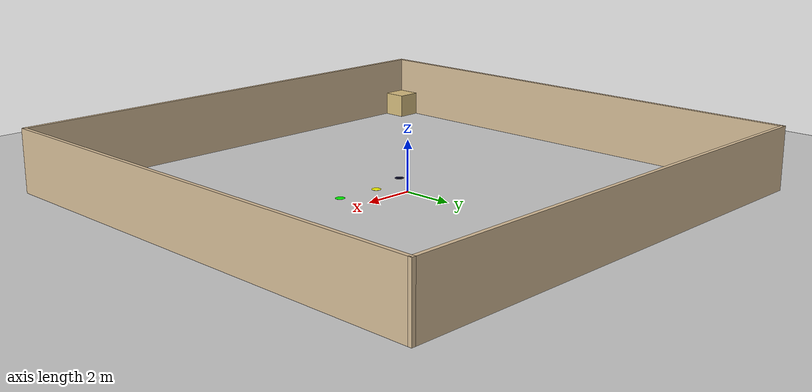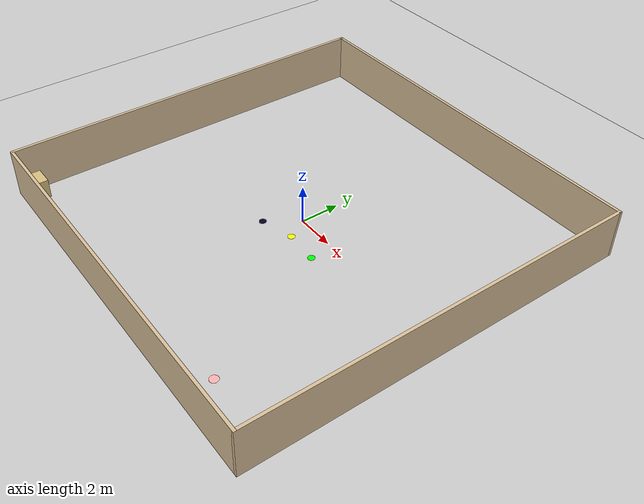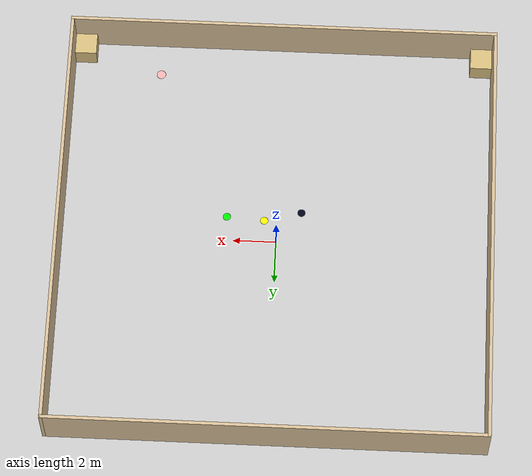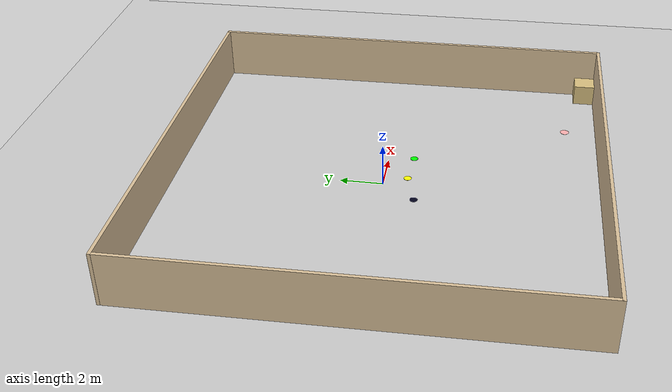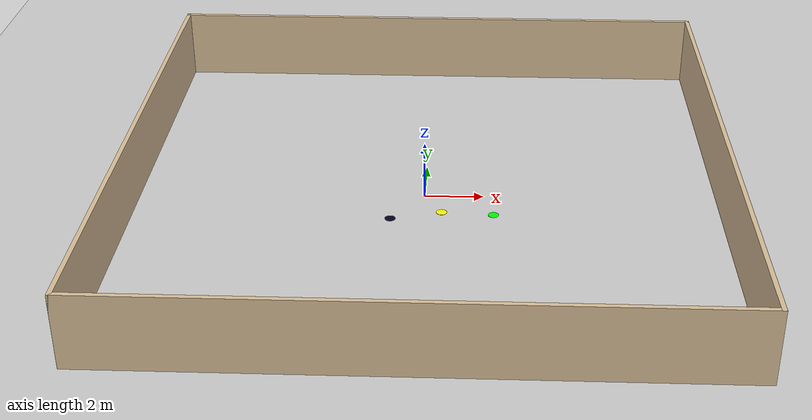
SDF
<sdf version="1.7">
 <world name="default">
  <model name="ground_plane">
   <static>1</static>
   <link name="link">
    <collision name="collision">
     <geometry><plane><normal>0 0 1</normal><size>100 100</size></plane></geometry>
     <surface><friction><ode><mu>100</mu><mu2>50</mu2></ode></friction></surface>
    </collision>
    <visual name="visual">
     <cast_shadows>0</cast_shadows>
     <geometry><plane><normal>0 0 1</normal><size>100 100</size></plane></geometry>
     <material>
      <script><uri>file://media/materials/scripts/gazebo.material</uri><name>Gazebo/Grey</name></script>
     </material>
    </visual>
   </link>
  </model>
  <model name="4Walls">
   <link name="Wall_17">
    <pose>0 -9.925 0 0 -0 0</pose>
    <inertial>
     <mass>1</mass>
     <inertia><ixx>1</ixx><ixy>0</ixy><ixz>0</ixz><iyy>1</iyy><iyz>0</iyz><izz>1</izz></inertia>
    </inertial>
    <visual name="Wall_17_Visual">
     <pose>0 0 1.25 0 -0 0</pose>
     <geometry><box><size>20 0.15 2.5</size></box></geometry>
     <material>
      <script><uri>file://media/materials/scripts/gazebo.material</uri><name>Gazebo/Grey</name></script>
      <ambient>0.7 0.6 0.5 1</ambient>
      <shader type="pixel"><normal_map>__default__</normal_map></shader>
      <diffuse>0.85 0.75 0.6 1</diffuse>
      <specular>0.4 0.35 0.3 1</specular>
      <emissive>0.15 0.12 0.1 1</emissive>
     </material>
     <meta><layer>0</layer></meta>
    </visual>
    <collision name="Wall_17_Collision">
     <pose>0 0 1.25 0 -0 0</pose>
     <geometry><box><size>20 0.15 2.5</size></box></geometry>
     <surface>
      <friction>
       <ode><mu>1</mu><mu2>1</mu2><fdir1>0 0 0</fdir1><slip1>0</slip1><slip2>0</slip2></ode>
       <torsional>
        <coefficient>1</coefficient>
        <patch_radius>0</patch_radius>
        <surface_radius>0</surface_radius>
        <use_patch_radius>1</use_patch_radius>
        <ode><slip>0</slip></ode>
       </torsional>
      </friction>
      <bounce><restitution_coefficient>0</restitution_coefficient><threshold>1e+06</threshold></bounce>
      <contact>
       <collide_without_contact>0</collide_without_contact>
       <collide_without_contact_bitmask>1</collide_without_contact_bitmask>
       <collide_bitmask>1</collide_bitmask>
       <ode>
        <soft_cfm>0</soft_cfm>
        <soft_erp>0.2</soft_erp>
        <kp>1e+13</kp>
        <kd>1</kd>
        <max_vel>0.01</max_vel>
        <min_depth>0</min_depth>
       </ode>
       <bullet>
        <split_impulse>1</split_impulse>
        <split_impulse_penetration_threshold>-0.01</split_impulse_penetration_threshold>
        <soft_cfm>0</soft_cfm>
        <soft_erp>0.2</soft_erp>
        <kp>1e+13</kp>
        <kd>1</kd>
       </bullet>
      </contact>
     </surface>
    </collision>
   </link>
   <link name="Wall_19">
    <pose>9.925 0 0 0 -0 1.5708</pose>
    <inertial>
     <mass>1</mass>
     <inertia><ixx>1</ixx><ixy>0</ixy><ixz>0</ixz><iyy>1</iyy><iyz>0</iyz><izz>1</izz></inertia>
    </inertial>
    <visual name="Wall_19_Visual">
     <pose>0 0 1.25 0 -0 0</pose>
     <geometry><box><size>20 0.15 2.5</size></box></geometry>
     <material>
      <script><uri>file://media/materials/scripts/gazebo.material</uri><name>Gazebo/Grey</name></script>
      <ambient>0.7 0.6 0.5 1</ambient>
      <shader type="pixel"><normal_map>__default__</normal_map></shader>
      <diffuse>0.85 0.75 0.6 1</diffuse>
      <specular>0.4 0.35 0.3 1</specular>
      <emissive>0.15 0.12 0.1 1</emissive>
     </material>
     <meta><layer>0</layer></meta>
    </visual>
    <collision name="Wall_19_Collision">
     <pose>0 0 1.25 0 -0 0</pose>
     <geometry><box><size>20 0.15 2.5</size></box></geometry>
     <surface>
      <friction>
       <ode><mu>1</mu><mu2>1</mu2><fdir1>0 0 0</fdir1><slip1>0</slip1><slip2>0</slip2></ode>
       <torsional>
        <coefficient>1</coefficient>
        <patch_radius>0</patch_radius>
        <surface_radius>0</surface_radius>
        <use_patch_radius>1</use_patch_radius>
        <ode><slip>0</slip></ode>
       </torsional>
      </friction>
      <bounce><restitution_coefficient>0</restitution_coefficient><threshold>1e+06</threshold></bounce>
      <contact>
       <collide_without_contact>0</collide_without_contact>
       <collide_without_contact_bitmask>1</collide_without_contact_bitmask>
       <collide_bitmask>1</collide_bitmask>
       <ode>
        <soft_cfm>0</soft_cfm>
        <soft_erp>0.2</soft_erp>
        <kp>1e+13</kp>
        <kd>1</kd>
        <max_vel>0.01</max_vel>
        <min_depth>0</min_depth>
       </ode>
       <bullet>
        <split_impulse>1</split_impulse>
        <split_impulse_penetration_threshold>-0.01</split_impulse_penetration_threshold>
        <soft_cfm>0</soft_cfm>
        <soft_erp>0.2</soft_erp>
        <kp>1e+13</kp>
        <kd>1</kd>
       </bullet>
      </contact>
     </surface>
    </collision>
   </link>
   <link name="Wall_21">
    <pose>0 9.925 0 0 -0 3.14159</pose>
    <inertial>
     <mass>1</mass>
     <inertia><ixx>1</ixx><ixy>0</ixy><ixz>0</ixz><iyy>1</iyy><iyz>0</iyz><izz>1</izz></inertia>
    </inertial>
    <visual name="Wall_21_Visual">
     <pose>0 0 1.25 0 -0 0</pose>
     <geometry><box><size>20 0.15 2.5</size></box></geometry>
     <material>
      <script><uri>file://media/materials/scripts/gazebo.material</uri><name>Gazebo/Grey</name></script>
      <ambient>0.7 0.6 0.5 1</ambient>
      <shader type="pixel"><normal_map>__default__</normal_map></shader>
      <diffuse>0.85 0.75 0.6 1</diffuse>
      <specular>0.4 0.35 0.3 1</specular>
      <emissive>0.15 0.12 0.1 1</emissive>
     </material>
     <meta><layer>0</layer></meta>
    </visual>
    <collision name="Wall_21_Collision">
     <pose>0 0 1.25 0 -0 0</pose>
     <geometry><box><size>20 0.15 2.5</size></box></geometry>
     <surface>
      <friction>
       <ode><mu>1</mu><mu2>1</mu2><fdir1>0 0 0</fdir1><slip1>0</slip1><slip2>0</slip2></ode>
       <torsional>
        <coefficient>1</coefficient>
        <patch_radius>0</patch_radius>
        <surface_radius>0</surface_radius>
        <use_patch_radius>1</use_patch_radius>
        <ode><slip>0</slip></ode>
       </torsional>
      </friction>
      <bounce><restitution_coefficient>0</restitution_coefficient><threshold>1e+06</threshold></bounce>
      <contact>
       <collide_without_contact>0</collide_without_contact>
       <collide_without_contact_bitmask>1</collide_without_contact_bitmask>
       <collide_bitmask>1</collide_bitmask>
       <ode>
        <soft_cfm>0</soft_cfm>
        <soft_erp>0.2</soft_erp>
        <kp>1e+13</kp>
        <kd>1</kd>
        <max_vel>0.01</max_vel>
        <min_depth>0</min_depth>
       </ode>
       <bullet>
        <split_impulse>1</split_impulse>
        <split_impulse_penetration_threshold>-0.01</split_impulse_penetration_threshold>
        <soft_cfm>0</soft_cfm>
        <soft_erp>0.2</soft_erp>
        <kp>1e+13</kp>
        <kd>1</kd>
       </bullet>
      </contact>
     </surface>
    </collision>
   </link>
   <link name="Wall_22">
    <pose>-9.925 0 0 0 0 -1.5708</pose>
    <inertial>
     <mass>1</mass>
     <inertia><ixx>1</ixx><ixy>0</ixy><ixz>0</ixz><iyy>1</iyy><iyz>0</iyz><izz>1</izz></inertia>
    </inertial>
    <visual name="Wall_22_Visual">
     <pose>0 0 1.25 0 -0 0</pose>
     <geometry><box><size>20 0.15 2.5</size></box></geometry>
     <material>
      <script><uri>file://media/materials/scripts/gazebo.material</uri><name>Gazebo/Grey</name></script>
      <ambient>0.7 0.6 0.5 1</ambient>
      <shader type="pixel"><normal_map>__default__</normal_map></shader>
      <diffuse>0.85 0.75 0.6 1</diffuse>
      <specular>0.4 0.35 0.3 1</specular>
      <emissive>0.15 0.12 0.1 1</emissive>
     </material>
     <meta><layer>0</layer></meta>
    </visual>
    <collision name="Wall_22_Collision">
     <pose>0 0 1.25 0 -0 0</pose>
     <geometry><box><size>20 0.15 2.5</size></box></geometry>
     <surface>
      <friction>
       <ode><mu>1</mu><mu2>1</mu2><fdir1>0 0 0</fdir1><slip1>0</slip1><slip2>0</slip2></ode>
       <torsional>
        <coefficient>1</coefficient>
        <patch_radius>0</patch_radius>
        <surface_radius>0</surface_radius>
        <use_patch_radius>1</use_patch_radius>
        <ode><slip>0</slip></ode>
       </torsional>
      </friction>
      <bounce><restitution_coefficient>0</restitution_coefficient><threshold>1e+06</threshold></bounce>
      <contact>
       <collide_without_contact>0</collide_without_contact>
       <collide_without_contact_bitmask>1</collide_without_contact_bitmask>
       <collide_bitmask>1</collide_bitmask>
       <ode>
        <soft_cfm>0</soft_cfm>
        <soft_erp>0.2</soft_erp>
        <kp>1e+13</kp>
        <kd>1</kd>
        <max_vel>0.01</max_vel>
        <min_depth>0</min_depth>
       </ode>
       <bullet>
        <split_impulse>1</split_impulse>
        <split_impulse_penetration_threshold>-0.01</split_impulse_penetration_threshold>
        <soft_cfm>0</soft_cfm>
        <soft_erp>0.2</soft_erp>
        <kp>1e+13</kp>
        <kd>1</kd>
       </bullet>
      </contact>
     </surface>
    </collision>
   </link>
   <static>1</static>
   <pose>0.075 -0.075 0 0 -0 0</pose>
  </model>
  <model name="unit_box">
   <link name="link">
    <inertial>
     <mass>1</mass>
     <inertia>
      <ixx>0.166667</ixx>
      <ixy>0</ixy>
      <ixz>0</ixz>
      <iyy>0.166667</iyy>
      <iyz>0</iyz>
      <izz>0.166667</izz>
     </inertia>
    </inertial>
    <visual name="visual">
     <geometry><box><size>1 1 1</size></box></geometry>
     <material>
      <script><name>Gazebo/Grey</name><uri>file://media/materials/scripts/gazebo.material</uri></script>
      <shader type="pixel"><normal_map>__default__</normal_map></shader>
      <ambient>0.7 0.6 0.4 1</ambient>
      <diffuse>0.85 0.75 0.5 1</diffuse>
      <specular>0.4 0.35 0.2 1</specular>
      <emissive>0.12 0.1 0.05 1</emissive>
     </material>
    </visual>
    <collision name="collision">
     <geometry><box><size>1 1 1</size></box></geometry>
     <surface>
      <friction>
       <ode><mu>1</mu><mu2>1</mu2><fdir1>0 0 0</fdir1><slip1>0</slip1><slip2>0</slip2></ode>
       <torsional>
        <coefficient>1</coefficient>
        <patch_radius>0</patch_radius>
        <surface_radius>0</surface_radius>
        <use_patch_radius>1</use_patch_radius>
        <ode><slip>0</slip></ode>
       </torsional>
      </friction>
      <bounce><restitution_coefficient>0</restitution_coefficient><threshold>1e+06</threshold></bounce>
      <contact>
       <collide_without_contact>0</collide_without_contact>
       <collide_without_contact_bitmask>1</collide_without_contact_bitmask>
       <collide_bitmask>1</collide_bitmask>
       <ode>
        <soft_cfm>0</soft_cfm>
        <soft_erp>0.2</soft_erp>
        <kp>1e+13</kp>
        <kd>1</kd>
        <max_vel>0.01</max_vel>
        <min_depth>0</min_depth>
       </ode>
       <bullet>
        <split_impulse>1</split_impulse>
        <split_impulse_penetration_threshold>-0.01</split_impulse_penetration_threshold>
        <soft_cfm>0</soft_cfm>
        <soft_erp>0.2</soft_erp>
        <kp>1e+13</kp>
        <kd>1</kd>
       </bullet>
      </contact>
     </surface>
    </collision>
   </link>
   <static>0</static>
   <pose>9.41531 -9.42498 0.499995 -1e-05 0 -1e-06</pose>
  </model>
  <model name="unit_box_clone_clone_clone">
   <link name="link">
    <inertial>
     <mass>1</mass>
     <inertia>
      <ixx>0.166667</ixx>
      <ixy>0</ixy>
      <ixz>0</ixz>
      <iyy>0.166667</iyy>
      <iyz>0</iyz>
      <izz>0.166667</izz>
     </inertia>
    </inertial>
    <visual name="visual">
     <geometry><box><size>1 1 1</size></box></geometry>
     <material>
      <script><name>Gazebo/Grey</name><uri>file://media/materials/scripts/gazebo.material</uri></script>
      <shader type="pixel"><normal_map>__default__</normal_map></shader>
      <ambient>0.7 0.6 0.4 1</ambient>
      <diffuse>0.85 0.75 0.5 1</diffuse>
      <specular>0.4 0.35 0.2 1</specular>
      <emissive>0.12 0.1 0.05 1</emissive>
     </material>
    </visual>
    <collision name="collision">
     <geometry><box><size>1 1 1</size></box></geometry>
     <surface>
      <friction>
       <ode><mu>1</mu><mu2>1</mu2><fdir1>0 0 0</fdir1><slip1>0</slip1><slip2>0</slip2></ode>
       <torsional>
        <coefficient>1</coefficient>
        <patch_radius>0</patch_radius>
        <surface_radius>0</surface_radius>
        <use_patch_radius>1</use_patch_radius>
        <ode><slip>0</slip></ode>
       </torsional>
      </friction>
      <bounce><restitution_coefficient>0</restitution_coefficient><threshold>1e+06</threshold></bounce>
      <contact>
       <collide_without_contact>0</collide_without_contact>
       <collide_without_contact_bitmask>1</collide_without_contact_bitmask>
       <collide_bitmask>1</collide_bitmask>
       <ode>
        <soft_cfm>0</soft_cfm>
        <soft_erp>0.2</soft_erp>
        <kp>1e+13</kp>
        <kd>1</kd>
        <max_vel>0.01</max_vel>
        <min_depth>0</min_depth>
       </ode>
       <bullet>
        <split_impulse>1</split_impulse>
        <split_impulse_penetration_threshold>-0.01</split_impulse_penetration_threshold>
        <soft_cfm>0</soft_cfm>
        <soft_erp>0.2</soft_erp>
        <kp>1e+13</kp>
        <kd>1</kd>
       </bullet>
      </contact>
     </surface>
    </collision>
   </link>
   <static>0</static>
   <pose>-9.27238 -9.42347 0.499995 0 1e-05 0.001035</pose>
  </model>
  <model name="unit_cylinder_clone_clone">
   <link name="link">
    <inertial>
     <mass>1</mass>
     <inertia><ixx>0.145833</ixx><ixy>0</ixy><ixz>0</ixz><iyy>0.145833</iyy><iyz>0</iyz><izz>0.125</izz></inertia>
    </inertial>
    <visual name="visual">
     <geometry><cylinder><radius>0.181775</radius><length>0.00464731</length></cylinder></geometry>
     <material>
      <script><name>Gazebo/Grey</name><uri>file://media/materials/scripts/gazebo.material</uri></script>
      <shader type="pixel"><normal_map>__default__</normal_map></shader>
      <ambient>0 0.5 0 1</ambient>
      <diffuse>0 1 0 1</diffuse>
      <specular>0.5 1 0.5 1</specular>
      <emissive>0 0.2 0 1</emissive>
     </material>
    </visual>
    <collision name="collision">
     <geometry><cylinder><radius>0.181775</radius><length>0.004647</length></cylinder></geometry>
     <surface>
      <friction>
       <ode><mu>1</mu><mu2>1</mu2><fdir1>0 0 0</fdir1><slip1>0</slip1><slip2>0</slip2></ode>
       <torsional>
        <coefficient>1</coefficient>
        <patch_radius>0</patch_radius>
        <surface_radius>0</surface_radius>
        <use_patch_radius>1</use_patch_radius>
        <ode><slip>0</slip></ode>
       </torsional>
      </friction>
      <bounce><restitution_coefficient>0</restitution_coefficient><threshold>1e+06</threshold></bounce>
      <contact>
       <collide_without_contact>0</collide_without_contact>
       <collide_without_contact_bitmask>1</collide_without_contact_bitmask>
       <collide_bitmask>1</collide_bitmask>
       <ode>
        <soft_cfm>0</soft_cfm>
        <soft_erp>0.2</soft_erp>
        <kp>1e+13</kp>
        <kd>1</kd>
        <max_vel>0.01</max_vel>
        <min_depth>0</min_depth>
       </ode>
       <bullet>
        <split_impulse>1</split_impulse>
        <split_impulse_penetration_threshold>-0.01</split_impulse_penetration_threshold>
        <soft_cfm>0</soft_cfm>
        <soft_erp>0.2</soft_erp>
        <kp>1e+13</kp>
        <kd>1</kd>
       </bullet>
      </contact>
     </surface>
    </collision>
   </link>
   <static>0</static>
   <pose>2.34397 -1.20351 0.002314 0 -0 0</pose>
  </model>
  <model name="unit_cylinder_clone_clone_clone_clone">
   <link name="link">
    <inertial>
     <mass>1</mass>
     <inertia><ixx>0.145833</ixx><ixy>0</ixy><ixz>0</ixz><iyy>0.145833</iyy><iyz>0</iyz><izz>0.125</izz></inertia>
    </inertial>
    <visual name="visual">
     <geometry><cylinder><radius>0.181775</radius><length>0.00464731</length></cylinder></geometry>
     <material>
      <script><name>Gazebo/Grey</name><uri>file://media/materials/scripts/gazebo.material</uri></script>
      <shader type="pixel"><normal_map>__default__</normal_map></shader>
      <ambient>0 0 0.1 1</ambient>
      <diffuse>0 0 0.1 1</diffuse>
      <specular>0.3 0.3 0.8 1</specular>
      <emissive>0 0 0.2 1</emissive>
     </material>
    </visual>
    <collision name="collision">
     <geometry><cylinder><radius>0.181775</radius><length>0.004647</length></cylinder></geometry>
     <surface>
      <friction>
       <ode><mu>1</mu><mu2>1</mu2><fdir1>0 0 0</fdir1><slip1>0</slip1><slip2>0</slip2></ode>
       <torsional>
        <coefficient>1</coefficient>
        <patch_radius>0</patch_radius>
        <surface_radius>0</surface_radius>
        <use_patch_radius>1</use_patch_radius>
        <ode><slip>0</slip></ode>
       </torsional>
      </friction>
      <bounce><restitution_coefficient>0</restitution_coefficient><threshold>1e+06</threshold></bounce>
      <contact>
       <collide_without_contact>0</collide_without_contact>
       <collide_without_contact_bitmask>1</collide_without_contact_bitmask>
       <collide_bitmask>1</collide_bitmask>
       <ode>
        <soft_cfm>0</soft_cfm>
        <soft_erp>0.2</soft_erp>
        <kp>1e+13</kp>
        <kd>1</kd>
        <max_vel>0.01</max_vel>
        <min_depth>0</min_depth>
       </ode>
       <bullet>
        <split_impulse>1</split_impulse>
        <split_impulse_penetration_threshold>-0.01</split_impulse_penetration_threshold>
        <soft_cfm>0</soft_cfm>
        <soft_erp>0.2</soft_erp>
        <kp>1e+13</kp>
        <kd>1</kd>
       </bullet>
      </contact>
     </surface>
    </collision>
   </link>
   <static>0</static>
   <pose>-1.10882 -1.54247 0.002314 0 -0 0</pose>
  </model>
  <model name="unit_cylinder_clone_0">
   <link name="link">
    <inertial>
     <mass>1</mass>
     <inertia><ixx>0.145833</ixx><ixy>0</ixy><ixz>0</ixz><iyy>0.145833</iyy><iyz>0</iyz><izz>0.125</izz></inertia>
    </inertial>
    <visual name="visual">
     <geometry><cylinder><radius>0.181775</radius><length>0.00464731</length></cylinder></geometry>
     <material>
      <script><name>Gazebo/Grey</name><uri>file://media/materials/scripts/gazebo.material</uri></script>
      <shader type="pixel"><normal_map>__default__</normal_map></shader>
      <ambient>1 1 0 1</ambient>
      <diffuse>1 1 0 1</diffuse>
      <specular>0.9 0.9 0.3 1</specular>
      <emissive>0.3 0.3 0 1</emissive>
     </material>
    </visual>
    <collision name="collision">
     <geometry><cylinder><radius>0.181775</radius><length>0.004647</length></cylinder></geometry>
     <surface>
      <friction>
       <ode><mu>1</mu><mu2>1</mu2><fdir1>0 0 0</fdir1><slip1>0</slip1><slip2>0</slip2></ode>
       <torsional>
        <coefficient>1</coefficient>
        <patch_radius>0</patch_radius>
        <surface_radius>0</surface_radius>
        <use_patch_radius>1</use_patch_radius>
        <ode><slip>0</slip></ode>
       </torsional>
      </friction>
      <bounce><restitution_coefficient>0</restitution_coefficient><threshold>1e+06</threshold></bounce>
      <contact>
       <collide_without_contact>0</collide_without_contact>
       <collide_without_contact_bitmask>1</collide_without_contact_bitmask>
       <collide_bitmask>1</collide_bitmask>
       <ode>
        <soft_cfm>0</soft_cfm>
        <soft_erp>0.2</soft_erp>
        <kp>1e+13</kp>
        <kd>1</kd>
        <max_vel>0.01</max_vel>
        <min_depth>0</min_depth>
       </ode>
       <bullet>
        <split_impulse>1</split_impulse>
        <split_impulse_penetration_threshold>-0.01</split_impulse_penetration_threshold>
        <soft_cfm>0</soft_cfm>
        <soft_erp>0.2</soft_erp>
        <kp>1e+13</kp>
        <kd>1</kd>
       </bullet>
      </contact>
     </surface>
    </collision>
   </link>
   <static>0</static>
   <pose>0.60077 -1.08034 0.002314 0 -0 0</pose>
  </model>
  <model name="unit_cylinder_0">
   <link name="link">
    <inertial>
     <mass>1</mass>
     <inertia><ixx>0.145833</ixx><ixy>0</ixy><ixz>0</ixz><iyy>0.145833</iyy><iyz>0</iyz><izz>0.125</izz></inertia>
    </inertial>
    <visual name="visual">
     <geometry><cylinder><radius>0.214237</radius><length>0.00321917</length></cylinder></geometry>
     <material>
      <script><name>Gazebo/Grey</name><uri>file://media/materials/scripts/gazebo.material</uri></script>
      <shader type="pixel"><normal_map>__default__</normal_map></shader>
      <ambient>0.5 0 0 1</ambient>
      <diffuse>1 0.7 0.7 1</diffuse>
      <specular>1 0.5 0.5 1</specular>
      <emissive>0.2 0 0 1</emissive>
     </material>
    </visual>
    <collision name="collision">
     <geometry><cylinder><radius>0.214237</radius><length>0.003219</length></cylinder></geometry>
     <surface>
      <friction>
       <ode><mu>1</mu><mu2>1</mu2><fdir1>0 0 0</fdir1><slip1>0</slip1><slip2>0</slip2></ode>
       <torsional>
        <coefficient>1</coefficient>
        <patch_radius>0</patch_radius>
        <surface_radius>0</surface_radius>
        <use_patch_radius>1</use_patch_radius>
        <ode><slip>0</slip></ode>
       </torsional>
      </friction>
      <bounce><restitution_coefficient>0</restitution_coefficient><threshold>1e+06</threshold></bounce>
      <contact>
       <collide_without_contact>0</collide_without_contact>
       <collide_without_contact_bitmask>1</collide_without_contact_bitmask>
       <collide_bitmask>1</collide_bitmask>
       <ode>
        <soft_cfm>0</soft_cfm>
        <soft_erp>0.2</soft_erp>
        <kp>1e+13</kp>
        <kd>1</kd>
        <max_vel>0.01</max_vel>
        <min_depth>0</min_depth>
       </ode>
       <bullet>
        <split_impulse>1</split_impulse>
        <split_impulse_penetration_threshold>-0.01</split_impulse_penetration_threshold>
        <soft_cfm>0</soft_cfm>
        <soft_erp>0.2</soft_erp>
        <kp>1e+13</kp>
        <kd>1</kd>
       </bullet>
      </contact>
     </surface>
    </collision>
   </link>
   <static>0</static>
   <pose>5.83067 -8.42489 0.001607 1e-06 1e-06 0</pose>
  </model>
 </world>
</sdf>
